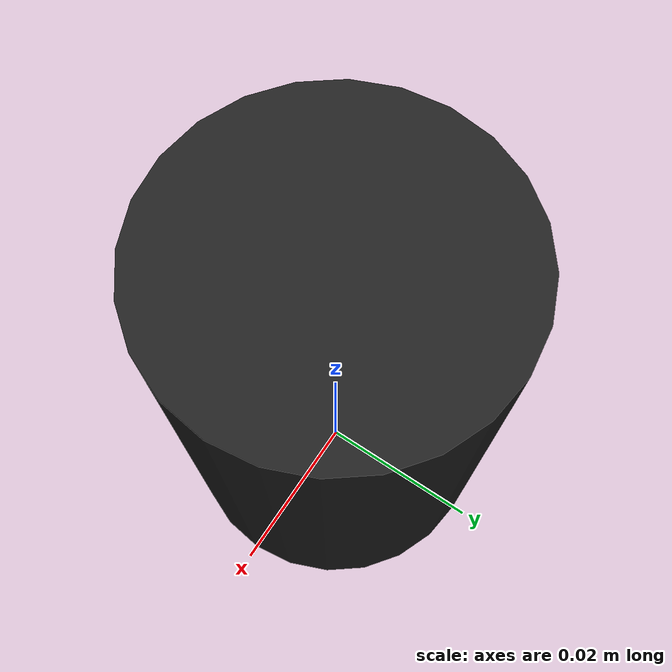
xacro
<?xml version="1.0"?>

<robot xmlns:xacro="https://www.ros.org/wiki/xacro">

	<!-- Chutado -->
	<xacro:property name="LIDAR_MASS" value="1.0"/>

	<!-- Medidos -->
	<xacro:property name="LIDAR_RADIUS" value="0.0185"/>
	<xacro:property name="LIDAR_THICKNESS" value="0.05"/>

	<link name="lidar_link">

			<visual>
					<geometry>
							<cylinder length="${LIDAR_THICKNESS}" radius="${LIDAR_RADIUS}" />
					</geometry>

					<origin xyz="0 0 ${(1/2)*LIDAR_THICKNESS}" rpy="0 0 0" />
					<material name="black"/>
			</visual>

			<collision>
					<geometry>
						<cylinder length="${LIDAR_THICKNESS}" radius="${LIDAR_RADIUS}"/>
					</geometry>

					<origin xyz="0 0 ${(1/2)*LIDAR_THICKNESS}" rpy="0 0 0" />
			</collision>

			<inertial>
					<mass value="${LIDAR_MASS}"/>

					<!-- Centro de massa -->
					<origin xyz="0 0 0" rpy="0 0 0"/>
					<inertia
							ixx="${(1/12) * LIDAR_MASS * (3 * LIDAR_RADIUS * LIDAR_RADIUS + LIDAR_THICKNESS * LIDAR_THICKNESS)}" ixy="0" ixz="0"
							iyy="${(1/12) * LIDAR_MASS * (3 * LIDAR_RADIUS * LIDAR_RADIUS + LIDAR_THICKNESS * LIDAR_THICKNESS)}" iyz="0"
							izz="${(1/2) * LIDAR_MASS * LIDAR_RADIUS * LIDAR_RADIUS}"/>
			</inertial>
	</link>

</robot>
